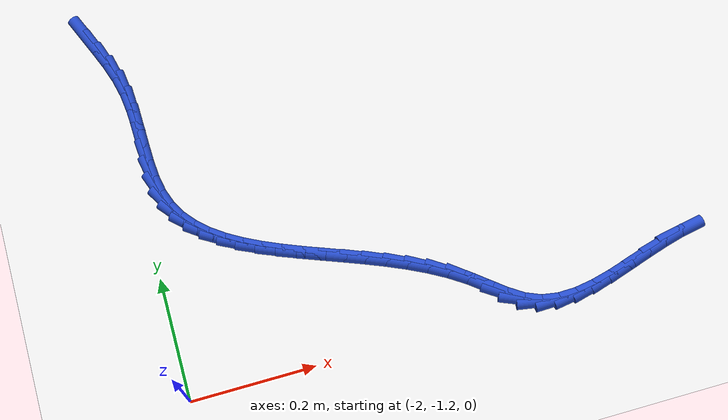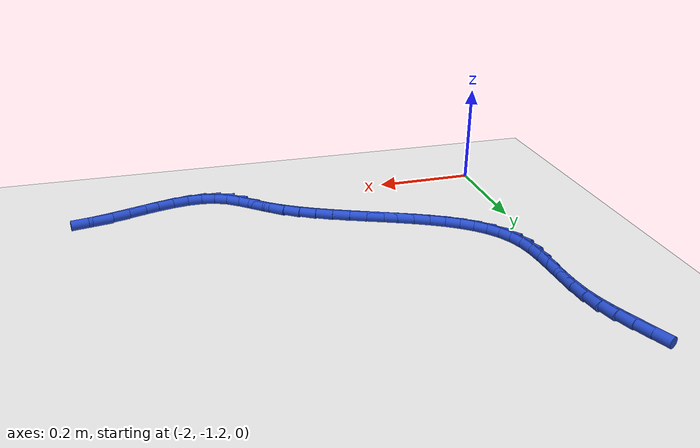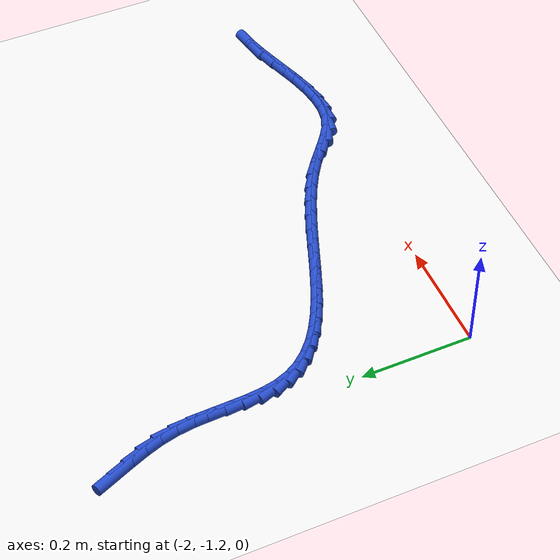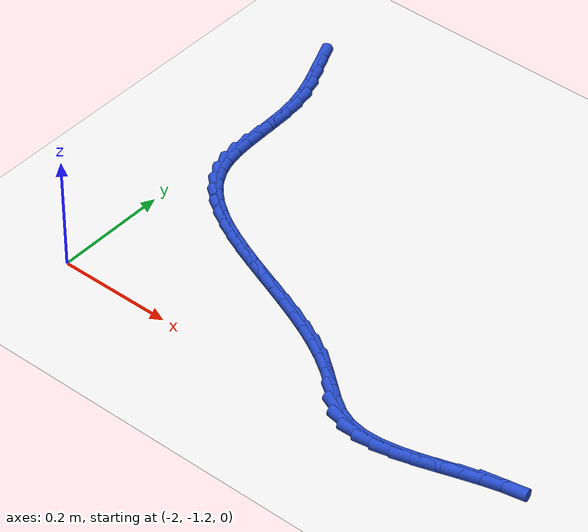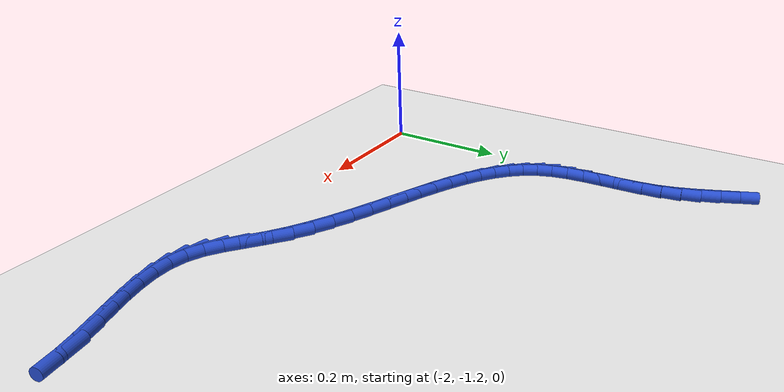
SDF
<sdf version="1.6">
 <world name="default">
  <model name="ground_plane">
   <static>1</static>
   <link name="link">
    <collision name="collision">
     <geometry><plane><normal>0 0 1</normal><size>100 100</size></plane></geometry>
     <surface><friction><ode><mu>100</mu><mu2>50</mu2></ode></friction></surface>
    </collision>
    <visual name="visual">
     <cast_shadows>0</cast_shadows>
     <geometry><plane><normal>0 0 1</normal><size>100 100</size></plane></geometry>
     <material>
      <script><uri>file://media/materials/scripts/gazebo.material</uri><name>Gazebo/WhiteGlow</name></script>
     </material>
    </visual>
   </link>
  </model>
  <model name="line">
   <link name="link_139">
    <pose>-2.021270295053633 -0.5695436895189536 0.01 0 1.57 -1.1727158594851217</pose>
    <collision name="collision">
     <geometry><cylinder><radius>0.01</radius><length>0.08</length></cylinder></geometry>
    </collision>
    <visual name="visual">
     <material>
      <script><name>Gazebo/Blue</name><uri>file://media/materials/scripts/gazebo.material</uri></script>
     </material>
     <geometry><cylinder><radius>0.01</radius><length>0.08</length></cylinder></geometry>
    </visual>
   </link>
   <link name="link_140">
    <pose>-2.0096224375367697 -0.5972415736547741 0.01 0 1.57 -1.1896784232357838</pose>
    <collision name="collision">
     <geometry><cylinder><radius>0.01</radius><length>0.08</length></cylinder></geometry>
    </collision>
    <visual name="visual">
     <material>
      <script><name>Gazebo/Blue</name><uri>file://media/materials/scripts/gazebo.material</uri></script>
     </material>
     <geometry><cylinder><radius>0.01</radius><length>0.08</length></cylinder></geometry>
    </visual>
   </link>
   <link name="link_141">
    <pose>-1.9983593303610243 -0.6253494820766051 0.01 0 1.57 -1.246289698895573</pose>
    <collision name="collision">
     <geometry><cylinder><radius>0.01</radius><length>0.08</length></cylinder></geometry>
    </collision>
    <visual name="visual">
     <material>
      <script><name>Gazebo/Blue</name><uri>file://media/materials/scripts/gazebo.material</uri></script>
     </material>
     <geometry><cylinder><radius>0.01</radius><length>0.08</length></cylinder></geometry>
    </visual>
   </link>
   <link name="link_142">
    <pose>-1.9886585212178227 -0.654186739885361 0.01 0 1.57 -1.3417380331341058</pose>
    <collision name="collision">
     <geometry><cylinder><radius>0.01</radius><length>0.08</length></cylinder></geometry>
    </collision>
    <visual name="visual">
     <material>
      <script><name>Gazebo/Blue</name><uri>file://media/materials/scripts/gazebo.material</uri></script>
     </material>
     <geometry><cylinder><radius>0.01</radius><length>0.08</length></cylinder></geometry>
    </visual>
   </link>
   <link name="link_143">
    <pose>-1.981691193940631 -0.6840701620745663 0.01 0 1.57 -1.4481969570587858</pose>
    <collision name="collision">
     <geometry><cylinder><radius>0.01</radius><length>0.08</length></cylinder></geometry>
    </collision>
    <visual name="visual">
     <material>
      <script><name>Gazebo/Blue</name><uri>file://media/materials/scripts/gazebo.material</uri></script>
     </material>
     <geometry><cylinder><radius>0.01</radius><length>0.08</length></cylinder></geometry>
    </visual>
   </link>
   <link name="link_144">
    <pose>-1.9778775919965372 -0.7150203689435877 0.01 0 1.57 -1.5172057589405539</pose>
    <collision name="collision">
     <geometry><cylinder><radius>0.01</radius><length>0.08</length></cylinder></geometry>
    </collision>
    <visual name="visual">
     <material>
      <script><name>Gazebo/Blue</name><uri>file://media/materials/scripts/gazebo.material</uri></script>
     </material>
     <geometry><cylinder><radius>0.01</radius><length>0.08</length></cylinder></geometry>
    </visual>
   </link>
   <link name="link_145">
    <pose>-1.9761896755562534 -0.7464867319320535 0.01 0 1.57 -1.5467226390462603</pose>
    <collision name="collision">
     <geometry><cylinder><radius>0.01</radius><length>0.08</length></cylinder></geometry>
    </collision>
    <visual name="visual">
     <material>
      <script><name>Gazebo/Blue</name><uri>file://media/materials/scripts/gazebo.material</uri></script>
     </material>
     <geometry><cylinder><radius>0.01</radius><length>0.08</length></cylinder></geometry>
    </visual>
   </link>
   <link name="link_146">
    <pose>-1.9754344147807403 -0.7778535451876191 0.01 0 1.57 -1.5376735892655113</pose>
    <collision name="collision">
     <geometry><cylinder><radius>0.01</radius><length>0.08</length></cylinder></geometry>
    </collision>
    <visual name="visual">
     <material>
      <script><name>Gazebo/Blue</name><uri>file://media/materials/scripts/gazebo.material</uri></script>
     </material>
     <geometry><cylinder><radius>0.01</radius><length>0.08</length></cylinder></geometry>
    </visual>
   </link>
   <link name="link_147">
    <pose>-1.97441877983096 -0.8085051028579404 0.01 0 1.57 -1.4867861782375507</pose>
    <collision name="collision">
     <geometry><cylinder><radius>0.01</radius><length>0.08</length></cylinder></geometry>
    </collision>
    <visual name="visual">
     <material>
      <script><name>Gazebo/Blue</name><uri>file://media/materials/scripts/gazebo.material</uri></script>
     </material>
     <geometry><cylinder><radius>0.01</radius><length>0.08</length></cylinder></geometry>
    </visual>
   </link>
   <link name="link_148">
    <pose>-1.9719497408678741 -0.8378256990906715 0.01 0 1.57 -1.3860532831205346</pose>
    <collision name="collision">
     <geometry><cylinder><radius>0.01</radius><length>0.08</length></cylinder></geometry>
    </collision>
    <visual name="visual">
     <material>
      <script><name>Gazebo/Blue</name><uri>file://media/materials/scripts/gazebo.material</uri></script>
     </material>
     <geometry><cylinder><radius>0.01</radius><length>0.08</length></cylinder></geometry>
    </visual>
   </link>
   <link name="link_149">
    <pose>-1.9668342680524429 -0.8651996280334682 0.01 0 1.57 -1.228004158394399</pose>
    <collision name="collision">
     <geometry><cylinder><radius>0.01</radius><length>0.08</length></cylinder></geometry>
    </collision>
    <visual name="visual">
     <material>
      <script><name>Gazebo/Blue</name><uri>file://media/materials/scripts/gazebo.material</uri></script>
     </material>
     <geometry><cylinder><radius>0.01</radius><length>0.08</length></cylinder></geometry>
    </visual>
   </link>
   <link name="link_150">
    <pose>-1.9579624677225642 -0.8900588578795215 0.01 0 1.57 -1.0489223643209455</pose>
    <collision name="collision">
     <geometry><cylinder><radius>0.01</radius><length>0.08</length></cylinder></geometry>
    </collision>
    <visual name="visual">
     <material>
      <script><name>Gazebo/Blue</name><uri>file://media/materials/scripts/gazebo.material</uri></script>
     </material>
     <geometry><cylinder><radius>0.01</radius><length>0.08</length></cylinder></geometry>
    </visual>
   </link>
   <link name="link_151">
    <pose>-1.945138433359474 -0.9123594784053978 0.01 0 1.57 -0.8843352234975672</pose>
    <collision name="collision">
     <geometry><cylinder><radius>0.01</radius><length>0.08</length></cylinder></geometry>
    </collision>
    <visual name="visual">
     <material>
      <script><name>Gazebo/Blue</name><uri>file://media/materials/scripts/gazebo.material</uri></script>
     </material>
     <geometry><cylinder><radius>0.01</radius><length>0.08</length></cylinder></geometry>
    </visual>
   </link>
   <link name="link_152">
    <pose>-1.9287319322258578 -0.9323819623291142 0.01 0 1.57 -0.743416053196749</pose>
    <collision name="collision">
     <geometry><cylinder><radius>0.01</radius><length>0.08</length></cylinder></geometry>
    </collision>
    <visual name="visual">
     <material>
      <script><name>Gazebo/Blue</name><uri>file://media/materials/scripts/gazebo.material</uri></script>
     </material>
     <geometry><cylinder><radius>0.01</radius><length>0.08</length></cylinder></geometry>
    </visual>
   </link>
   <link name="link_153">
    <pose>-1.909121137772469 -0.9504116028572839 0.01 0 1.57 -0.6289226280362283</pose>
    <collision name="collision">
     <geometry><cylinder><radius>0.01</radius><length>0.08</length></cylinder></geometry>
    </collision>
    <visual name="visual">
     <material>
      <script><name>Gazebo/Blue</name><uri>file://media/materials/scripts/gazebo.material</uri></script>
     </material>
     <geometry><cylinder><radius>0.01</radius><length>0.08</length></cylinder></geometry>
    </visual>
   </link>
   <link name="link_154">
    <pose>-1.8866842234500645 -0.966733693196521 0.01 0 1.57 -0.5395005557447288</pose>
    <collision name="collision">
     <geometry><cylinder><radius>0.01</radius><length>0.08</length></cylinder></geometry>
    </collision>
    <visual name="visual">
     <material>
      <script><name>Gazebo/Blue</name><uri>file://media/materials/scripts/gazebo.material</uri></script>
     </material>
     <geometry><cylinder><radius>0.01</radius><length>0.08</length></cylinder></geometry>
    </visual>
   </link>
   <link name="link_155">
    <pose>-1.861799362709396 -0.9816335265534386 0.01 0 1.57 -0.4720867084852325</pose>
    <collision name="collision">
     <geometry><cylinder><radius>0.01</radius><length>0.08</length></cylinder></geometry>
    </collision>
    <visual name="visual">
     <material>
      <script><name>Gazebo/Blue</name><uri>file://media/materials/scripts/gazebo.material</uri></script>
     </material>
     <geometry><cylinder><radius>0.01</radius><length>0.08</length></cylinder></geometry>
    </visual>
   </link>
   <link name="link_156">
    <pose>-1.8348447290012215 -0.9953963961346506 0.01 0 1.57 -0.42344580844856283</pose>
    <collision name="collision">
     <geometry><cylinder><radius>0.01</radius><length>0.08</length></cylinder></geometry>
    </collision>
    <visual name="visual">
     <material>
      <script><name>Gazebo/Blue</name><uri>file://media/materials/scripts/gazebo.material</uri></script>
     </material>
     <geometry><cylinder><radius>0.01</radius><length>0.08</length></cylinder></geometry>
    </visual>
   </link>
   <link name="link_157">
    <pose>-1.8061984957762947 -1.0083075951467702 0.01 0 1.57 -0.39084935732809073</pose>
    <collision name="collision">
     <geometry><cylinder><radius>0.01</radius><length>0.08</length></cylinder></geometry>
    </collision>
    <visual name="visual">
     <material>
      <script><name>Gazebo/Blue</name><uri>file://media/materials/scripts/gazebo.material</uri></script>
     </material>
     <geometry><cylinder><radius>0.01</radius><length>0.08</length></cylinder></geometry>
    </visual>
   </link>
   <link name="link_158">
    <pose>-1.77623883648537 -1.020652416796411 0.01 0 1.57 -0.3722696116249931</pose>
    <collision name="collision">
     <geometry><cylinder><radius>0.01</radius><length>0.08</length></cylinder></geometry>
    </collision>
    <visual name="visual">
     <material>
      <script><name>Gazebo/Blue</name><uri>file://media/materials/scripts/gazebo.material</uri></script>
     </material>
     <geometry><cylinder><radius>0.01</radius><length>0.08</length></cylinder></geometry>
    </visual>
   </link>
   <link name="link_159">
    <pose>-1.7453439245792026 -1.0327161542901873 0.01 0 1.57 -0.36637111076252993</pose>
    <collision name="collision">
     <geometry><cylinder><radius>0.01</radius><length>0.08</length></cylinder></geometry>
    </collision>
    <visual name="visual">
     <material>
      <script><name>Gazebo/Blue</name><uri>file://media/materials/scripts/gazebo.material</uri></script>
     </material>
     <geometry><cylinder><radius>0.01</radius><length>0.08</length></cylinder></geometry>
    </visual>
   </link>
   <link name="link_160">
    <pose>-1.713891933508547 -1.0447841008347112 0.01 0 1.57 -0.37244314864494726</pose>
    <collision name="collision">
     <geometry><cylinder><radius>0.01</radius><length>0.08</length></cylinder></geometry>
    </collision>
    <visual name="visual">
     <material>
      <script><name>Gazebo/Blue</name><uri>file://media/materials/scripts/gazebo.material</uri></script>
     </material>
     <geometry><cylinder><radius>0.01</radius><length>0.08</length></cylinder></geometry>
    </visual>
   </link>
   <link name="link_161">
    <pose>-1.682261036724159 -1.0571415496365977 0.01 0 1.57 -0.39032978180899836</pose>
    <collision name="collision">
     <geometry><cylinder><radius>0.01</radius><length>0.08</length></cylinder></geometry>
    </collision>
    <visual name="visual">
     <material>
      <script><name>Gazebo/Blue</name><uri>file://media/materials/scripts/gazebo.material</uri></script>
     </material>
     <geometry><cylinder><radius>0.01</radius><length>0.08</length></cylinder></geometry>
    </visual>
   </link>
   <link name="link_162">
    <pose>-1.6508294076767915 -1.07007379390246 0.01 0 1.57 -0.4203701274600745</pose>
    <collision name="collision">
     <geometry><cylinder><radius>0.01</radius><length>0.08</length></cylinder></geometry>
    </collision>
    <visual name="visual">
     <material>
      <script><name>Gazebo/Blue</name><uri>file://media/materials/scripts/gazebo.material</uri></script>
     </material>
     <geometry><cylinder><radius>0.01</radius><length>0.08</length></cylinder></geometry>
    </visual>
   </link>
   <link name="link_163">
    <pose>-1.6199752198172015 -1.0838661268389114 0.01 0 1.57 -0.4633379329992385</pose>
    <collision name="collision">
     <geometry><cylinder><radius>0.01</radius><length>0.08</length></cylinder></geometry>
    </collision>
    <visual name="visual">
     <material>
      <script><name>Gazebo/Blue</name><uri>file://media/materials/scripts/gazebo.material</uri></script>
     </material>
     <geometry><cylinder><radius>0.01</radius><length>0.08</length></cylinder></geometry>
    </visual>
   </link>
   <link name="link_164">
    <pose>-1.5900766465961427 -1.0988038416525652 0.01 0 1.57 -0.5203501685964012</pose>
    <collision name="collision">
     <geometry><cylinder><radius>0.01</radius><length>0.08</length></cylinder></geometry>
    </collision>
    <visual name="visual">
     <material>
      <script><name>Gazebo/Blue</name><uri>file://media/materials/scripts/gazebo.material</uri></script>
     </material>
     <geometry><cylinder><radius>0.01</radius><length>0.08</length></cylinder></geometry>
    </visual>
   </link>
   <link name="link_165">
    <pose>-1.5615118614643708 -1.1151722315500356 0.01 0 1.57 -0.5926923710322248</pose>
    <collision name="collision">
     <geometry><cylinder><radius>0.01</radius><length>0.08</length></cylinder></geometry>
    </collision>
    <visual name="visual">
     <material>
      <script><name>Gazebo/Blue</name><uri>file://media/materials/scripts/gazebo.material</uri></script>
     </material>
     <geometry><cylinder><radius>0.01</radius><length>0.08</length></cylinder></geometry>
    </visual>
   </link>
   <link name="link_166">
    <pose>-1.5346590378726401 -1.133256589737936 0.01 0 1.57 -0.6677976474601527</pose>
    <collision name="collision">
     <geometry><cylinder><radius>0.01</radius><length>0.08</length></cylinder></geometry>
    </collision>
    <visual name="visual">
     <material>
      <script><name>Gazebo/Blue</name><uri>file://media/materials/scripts/gazebo.material</uri></script>
     </material>
     <geometry><cylinder><radius>0.01</radius><length>0.08</length></cylinder></geometry>
    </visual>
   </link>
   <link name="link_167">
    <pose>-1.5096842742409793 -1.1529535793489762 0.01 0 1.57 -0.6773488646157894</pose>
    <collision name="collision">
     <geometry><cylinder><radius>0.01</radius><length>0.08</length></cylinder></geometry>
    </collision>
    <visual name="visual">
     <material>
      <script><name>Gazebo/Blue</name><uri>file://media/materials/scripts/gazebo.material</uri></script>
     </material>
     <geometry><cylinder><radius>0.01</radius><length>0.08</length></cylinder></geometry>
    </visual>
   </link>
   <link name="link_168">
    <pose>-1.4857056097328605 -1.1722392821775747 0.01 0 1.57 -0.5918030947315085</pose>
    <collision name="collision">
     <geometry><cylinder><radius>0.01</radius><length>0.08</length></cylinder></geometry>
    </collision>
    <visual name="visual">
     <material>
      <script><name>Gazebo/Blue</name><uri>file://media/materials/scripts/gazebo.material</uri></script>
     </material>
     <geometry><cylinder><radius>0.01</radius><length>0.08</length></cylinder></geometry>
    </visual>
   </link>
   <link name="link_169">
    <pose>-1.4615178993728448 -1.1884975411517442 0.01 0 1.57 -0.3967711998130272</pose>
    <collision name="collision">
     <geometry><cylinder><radius>0.01</radius><length>0.08</length></cylinder></geometry>
    </collision>
    <visual name="visual">
     <material>
      <script><name>Gazebo/Blue</name><uri>file://media/materials/scripts/gazebo.material</uri></script>
     </material>
     <geometry><cylinder><radius>0.01</radius><length>0.08</length></cylinder></geometry>
    </visual>
   </link>
   <link name="link_170">
    <pose>-1.4359548066691383 -1.199208283547492 0.01 0 1.57 -0.16343356892968783</pose>
    <collision name="collision">
     <geometry><cylinder><radius>0.01</radius><length>0.08</length></cylinder></geometry>
    </collision>
    <visual name="visual">
     <material>
      <script><name>Gazebo/Blue</name><uri>file://media/materials/scripts/gazebo.material</uri></script>
     </material>
     <geometry><cylinder><radius>0.01</radius><length>0.08</length></cylinder></geometry>
    </visual>
   </link>
   <link name="link_171">
    <pose>-1.4086045488044636 -1.2037184619108192 0.01 0 1.57 0.022545119477526188</pose>
    <collision name="collision">
     <geometry><cylinder><radius>0.01</radius><length>0.08</length></cylinder></geometry>
    </collision>
    <visual name="visual">
     <material>
      <script><name>Gazebo/Blue</name><uri>file://media/materials/scripts/gazebo.material</uri></script>
     </material>
     <geometry><cylinder><radius>0.01</radius><length>0.08</length></cylinder></geometry>
    </visual>
   </link>
   <link name="link_172">
    <pose>-1.379739384609 -1.2030675830547988 0.01 0 1.57 0.15534389352610145</pose>
    <collision name="collision">
     <geometry><cylinder><radius>0.01</radius><length>0.08</length></cylinder></geometry>
    </collision>
    <visual name="visual">
     <material>
      <script><name>Gazebo/Blue</name><uri>file://media/materials/scripts/gazebo.material</uri></script>
     </material>
     <geometry><cylinder><radius>0.01</radius><length>0.08</length></cylinder></geometry>
    </visual>
   </link>
   <link name="link_173">
    <pose>-1.3496563280610094 -1.1983564065417678 0.01 0 1.57 0.24254047875236373</pose>
    <collision name="collision">
     <geometry><cylinder><radius>0.01</radius><length>0.08</length></cylinder></geometry>
    </collision>
    <visual name="visual">
     <material>
      <script><name>Gazebo/Blue</name><uri>file://media/materials/scripts/gazebo.material</uri></script>
     </material>
     <geometry><cylinder><radius>0.01</radius><length>0.08</length></cylinder></geometry>
    </visual>
   </link>
   <link name="link_174">
    <pose>-1.3186523931387537 -1.1906856919340636 0.01 0 1.57 0.2926501063332609</pose>
    <collision name="collision">
     <geometry><cylinder><radius>0.01</radius><length>0.08</length></cylinder></geometry>
    </collision>
    <visual name="visual">
     <material>
      <script><name>Gazebo/Blue</name><uri>file://media/materials/scripts/gazebo.material</uri></script>
     </material>
     <geometry><cylinder><radius>0.01</radius><length>0.08</length></cylinder></geometry>
    </visual>
   </link>
   <link name="link_175">
    <pose>-1.2870245938204945 -1.1811561987940233 0.01 0 1.57 0.311462661399028</pose>
    <collision name="collision">
     <geometry><cylinder><radius>0.01</radius><length>0.08</length></cylinder></geometry>
    </collision>
    <visual name="visual">
     <material>
      <script><name>Gazebo/Blue</name><uri>file://media/materials/scripts/gazebo.material</uri></script>
     </material>
     <geometry><cylinder><radius>0.01</radius><length>0.08</length></cylinder></geometry>
    </visual>
   </link>
   <link name="link_176">
    <pose>-1.2550699440844941 -1.1708686866839844 0.01 0 1.57 0.3014492120648237</pose>
    <collision name="collision">
     <geometry><cylinder><radius>0.01</radius><length>0.08</length></cylinder></geometry>
    </collision>
    <visual name="visual">
     <material>
      <script><name>Gazebo/Blue</name><uri>file://media/materials/scripts/gazebo.material</uri></script>
     </material>
     <geometry><cylinder><radius>0.01</radius><length>0.08</length></cylinder></geometry>
    </visual>
   </link>
   <link name="link_177">
    <pose>-1.2230854579090136 -1.160923915166284 0.01 0 1.57 0.26187716720245885</pose>
    <collision name="collision">
     <geometry><cylinder><radius>0.01</radius><length>0.08</length></cylinder></geometry>
    </collision>
    <visual name="visual">
     <material>
      <script><name>Gazebo/Blue</name><uri>file://media/materials/scripts/gazebo.material</uri></script>
     </material>
     <geometry><cylinder><radius>0.01</radius><length>0.08</length></cylinder></geometry>
    </visual>
   </link>
   <link name="link_178">
    <pose>-1.1913681492723163 -1.1524226438032596 0.01 0 1.57 0.18893646828379143</pose>
    <collision name="collision">
     <geometry><cylinder><radius>0.01</radius><length>0.08</length></cylinder></geometry>
    </collision>
    <visual name="visual">
     <material>
      <script><name>Gazebo/Blue</name><uri>file://media/materials/scripts/gazebo.material</uri></script>
     </material>
     <geometry><cylinder><radius>0.01</radius><length>0.08</length></cylinder></geometry>
    </visual>
   </link>
  </model>
 </world>
</sdf>
